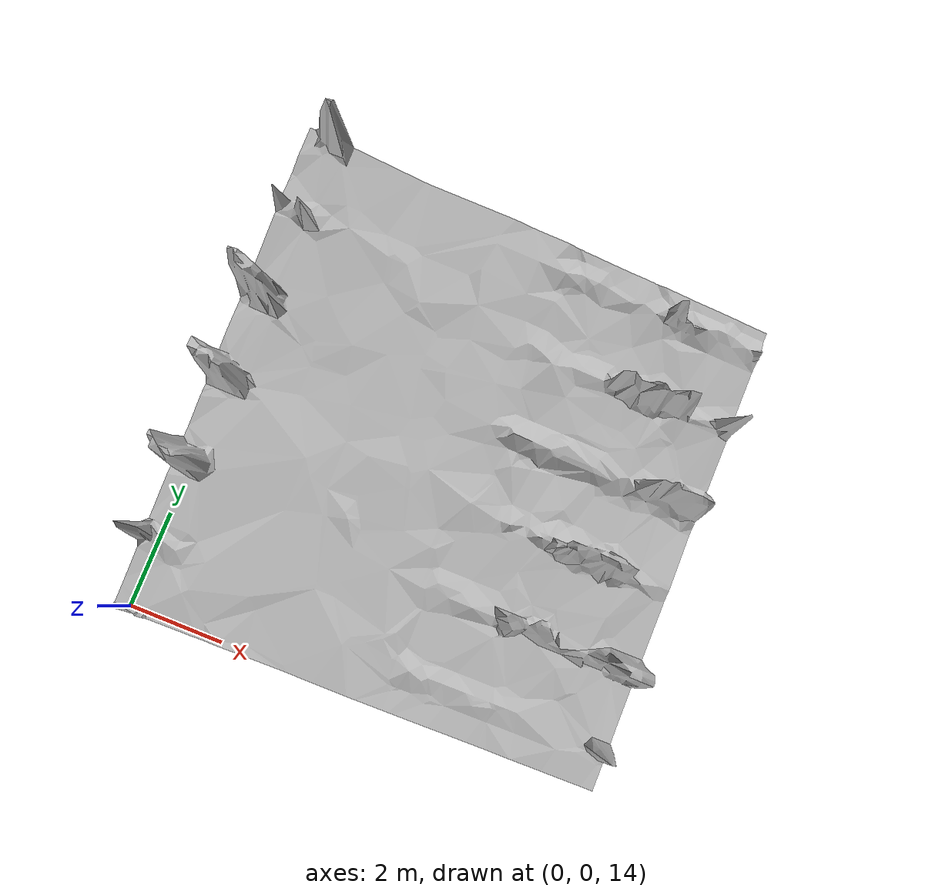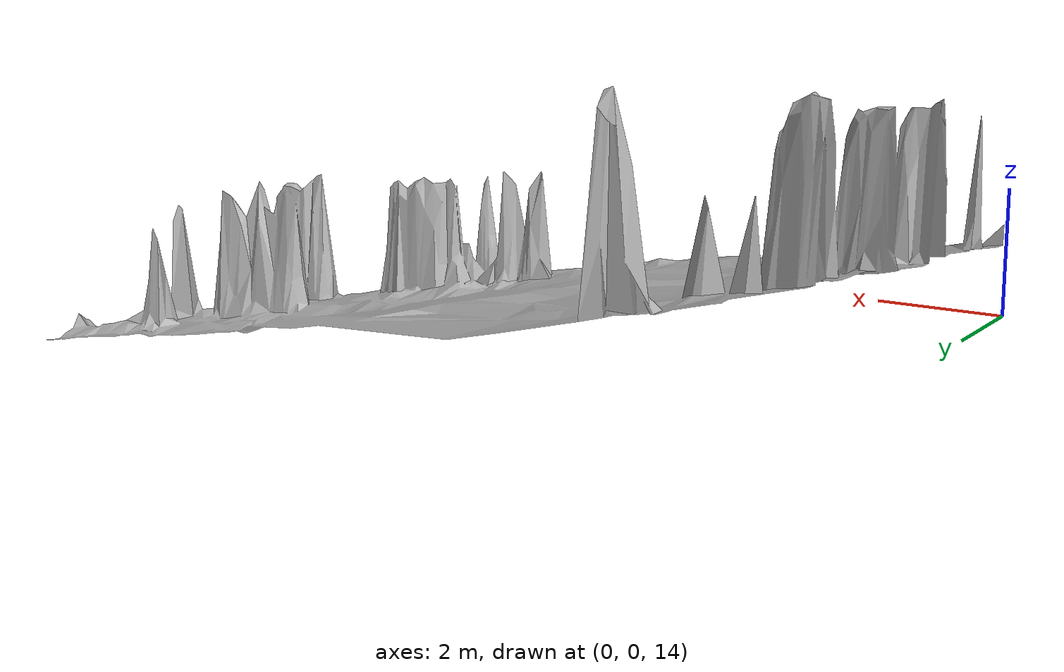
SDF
<?xml version="1.0" ?>
<sdf version="1.10">
    <model name="map_140_10">
        <link name="map_140_10_link">
            <visual name="map_140_10_visual">
                <geometry>
                    <mesh>
                        <uri>meshes/visual/map_140_10.obj</uri>
                    </mesh>
                </geometry>
            </visual>
            <collision name="map_140_10_collision">
                <surface>
                    <friction>
                        <ode>
                            <mu>2.316343837943928</mu>
                            <mu2>2.316343837943928</mu2>
                        </ode>
                        <bullet>
                            <friction>2.316343837943928</friction>
                            <friction2>2.316343837943928</friction2>
                        </bullet>
                    </friction>
                </surface>
                <geometry>
                    <mesh>
                        <uri>meshes/visual/map_140_10.obj</uri>
                    </mesh>
                </geometry>
            </collision>
        </link>
        <static>True</static>
    </model>
</sdf>
